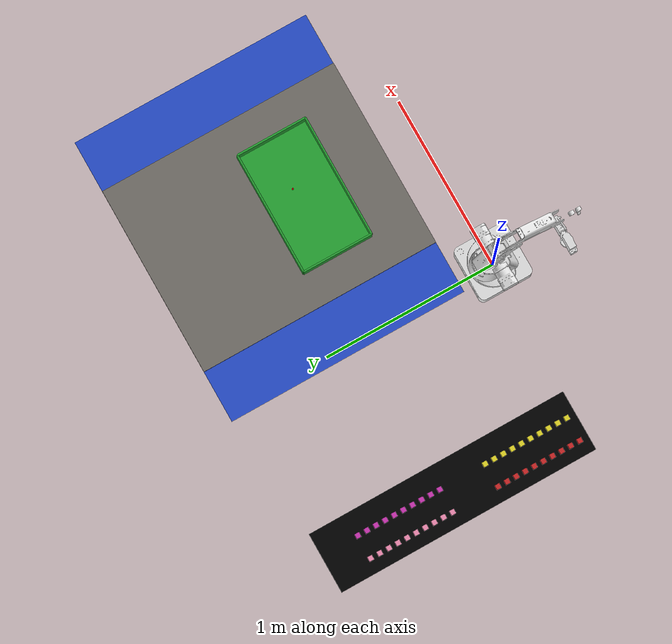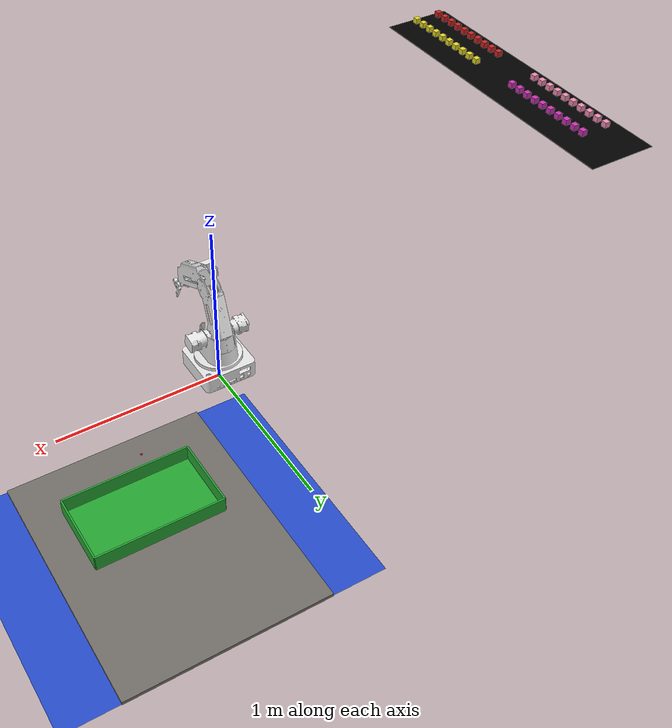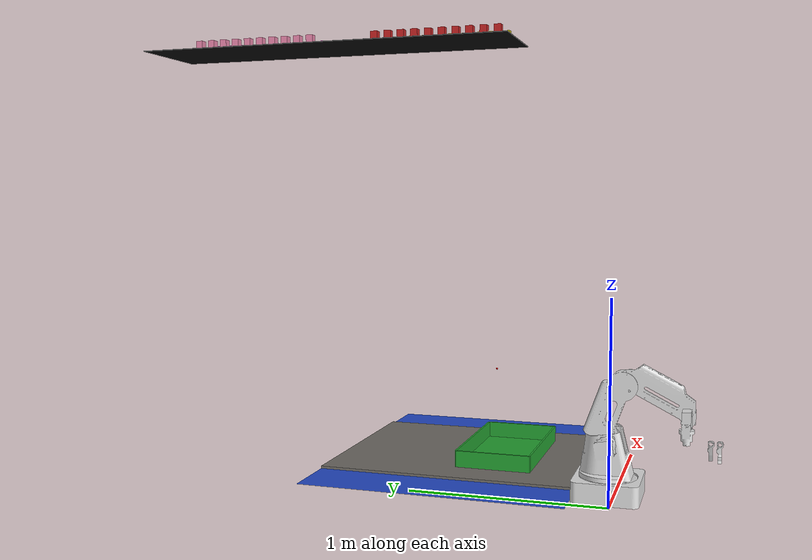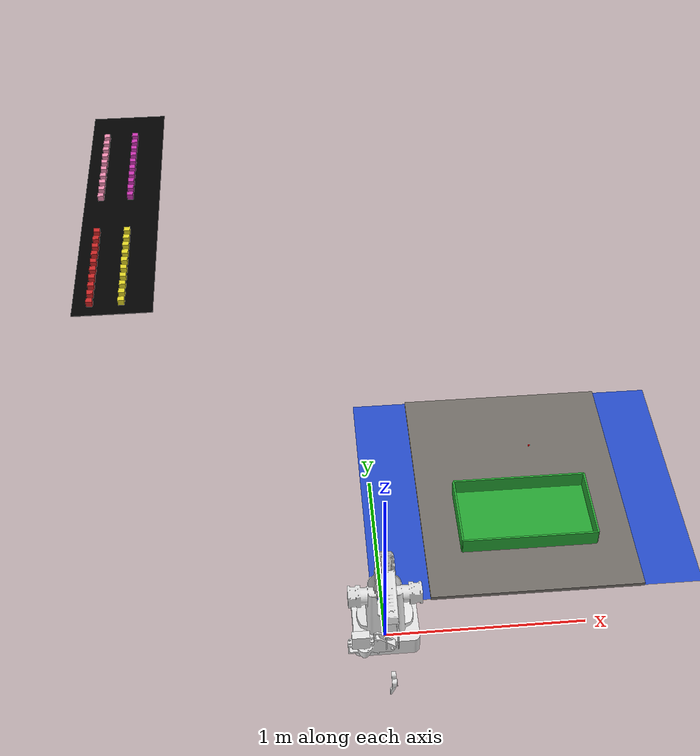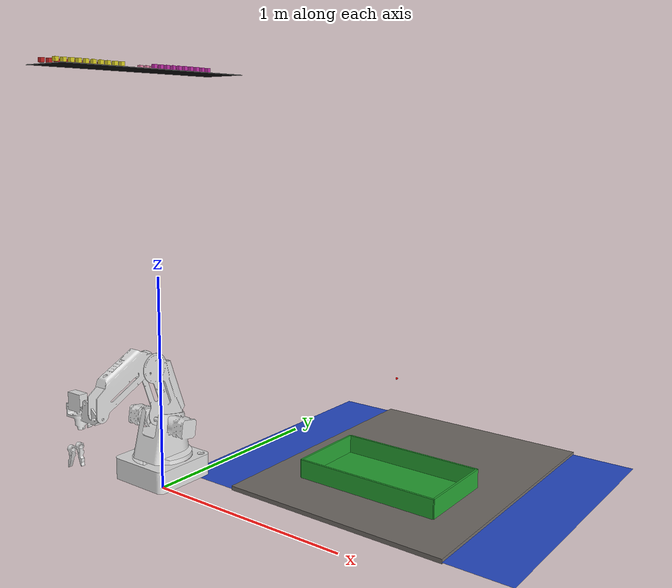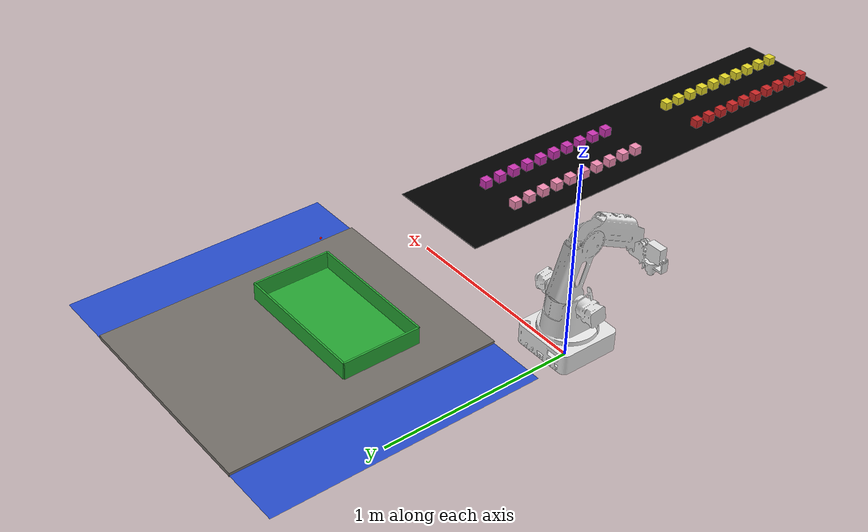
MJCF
<?xml version="1.0" encoding="utf-8"?>
<mujoco>
	<compiler angle="radian" coordinate="local" meshdir="../stls/dobot" texturedir="../textures"></compiler>
	<option timestep="0.002">
		<flag warmstart="enable"></flag>
	</option>
	<visual>
		<quality shadowsize="4096"></quality>
	</visual>

	<size njmax="1500" nconmax="500"></size>

	<include file="shared_pick.xml"></include>

	<worldbody>
		<geom name="floor0" pos="0.8 0.9 0" size="0.85 0.70 1" type="plane" condim="3" material="floor_mat"></geom>
		<body name="floor0" pos="0.8 0.75 0">
			<site name="target0" pos="0 0 0.5" size="0.005" rgba="1 0 0 1" type="sphere"></site>
			<body pos="0 0.15 0" name="table0">
				<geom name="table0" size="0.55 0.7 0.01" type="box" mass="2000" material="table_mat"></geom>
				<body name="tray" pos = "0 -0.215 0.01">
					<geom name="tray_base" size="0.355 0.205 0.001" type="box" mass="300" material="tray_mat"></geom>
					<geom size="0.355 0.005 0.045" type="box" mass="300" pos="0 0.205 0.045" material="tray_mat"></geom>
					<geom size="0.355 0.005 0.045" type="box" mass="300" pos="0 -0.205 0.045" material="tray_mat"></geom>
					<geom size="0.005 0.205 0.045" type="box" mass="300" pos="0.355 0 0.045" material="tray_mat"></geom>
					<geom size="0.005 0.205 0.045" type="box" mass="300" pos="-0.355 0 0.045" material="tray_mat"></geom>
				</body>
				<camera euler="0.78 0 0" fovy="40" name="camera0" pos="0 -1 1" mode="targetbody" target="tray"></camera>
			</body>
		</body>

		<include file="robot_pick.xml"></include>

		<body name="object0" pos="0.025 0.025 0.025">
			<joint name="object0:joint" type="free" damping="0.01"></joint>
			<geom size="0.0125 0.0125 0.0125" type="box" condim="3" name="object0" material="blue_block_mat" mass="2"></geom>
			<site name="object0" pos="0 0 0" size="0.012 0.012 0.012" rgba="1 0 0 1" type="sphere"></site>
		</body>

		<include file="clutter.xml"></include>

		<light directional="false" ambient="0.2 0.2 0.2" diffuse="0.8 0.8 0.8" specular="0.3 0.3 0.3" castshadow="false" pos="0.8 0.9 3" name="light0"></light>
	</worldbody>

	<actuator>
		<position ctrllimited="true" ctrlrange="0 0.025" joint="dobot:r_gripper_joint" kp="30000" name="dobot:r_gripper_joint"></position>
		<position ctrllimited="true" ctrlrange="-0.025 0" joint="dobot:l_gripper_joint" kp="30000" name="dobot:l_gripper_joint"></position>
	</actuator>
</mujoco>

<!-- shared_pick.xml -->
<mujoco>
    <asset>
        <texture type="skybox" builtin="gradient" rgb1="0 0 0" rgb2="0.5 0.5 1" width="32" height="32"></texture>
        <texture name="texture_block" file="block.png" gridsize="3 4" gridlayout=".U..LFRB.D.."></texture>
        <texture name="red_block" file="block_red.png" gridsize="3 4" gridlayout=".U..LFRB.D.."></texture>
        <texture name="yellow_block" file="block_yellow.png" gridsize="3 4" gridlayout=".U..LFRB.D.."></texture>
        <texture name="green_block" file="block_green.png" gridsize="3 4" gridlayout=".U..LFRB.D.."></texture>
        <texture name="blue_block" file="block_blue.png" gridsize="3 4" gridlayout=".U..LFRB.D.."></texture>
        <texture name="pink_block" file="block_pink.png" gridsize="3 4" gridlayout=".U..LFRB.D.."></texture>
        <texture name="magenta_block" file="block_magenta.png" gridsize="3 4" gridlayout=".U..LFRB.D.."></texture>
        <texture name="arm_tex" file="arm.png" type="2d"></texture>
        <texture name="base_tex" file="base.png" type="2d"></texture>
        <texture name="base_blue_tex" file="base_blue.png" type="2d"></texture>
        <texture name="base_green_tex" file="base_green.png" type="2d"></texture>
        <texture name="gripper_tex" file="gripper.png" type="2d"></texture>

        <material name="table_mat" specular="0" shininess="0.5" reflectance="0" rgba="0.6 0.6 0.6 1" texture="base_tex"></material>
        <material name="floor_mat" specular="0" shininess="0.5" reflectance="0" rgba="1 1 1 1" texture="base_blue_tex"></material>
        <material name="tray_mat" specular="0" shininess="0.5" reflectance="0" rgba="1 1 1 1" texture="base_green_tex"></material>
        <material name="block_mat" specular="0" shininess="0.5" reflectance="0" rgba="1 1 1 1" texture="texture_block"></material>
        <material name="red_block_mat" specular="0" shininess="0.5" reflectance="0" rgba="1 1 1 1" texture="red_block"></material>
        <material name="yellow_block_mat" specular="0" shininess="0.5" reflectance="0" rgba="1 1 1 1" texture="yellow_block"></material>
        <material name="green_block_mat" specular="0" shininess="0.5" reflectance="0" rgba="1 1 1 1" texture="green_block"></material>
        <material name="blue_block_mat" specular="0" shininess="0.5" reflectance="0" rgba="1 1 1 1" texture="blue_block"></material>
        <material name="pink_block_mat" specular="0" shininess="0.5" reflectance="0" rgba="1 1 1 1" texture="pink_block"></material>
        <material name="magenta_block_mat" specular="0" shininess="0.5" reflectance="0" rgba="1 1 1 1" texture="magenta_block"></material>
        <material name="puck_mat" specular="0" shininess="0.5" reflectance="0" rgba="0.2 0.2 0.2 1" texture="base_tex"></material>
        <material name="dobot_mat" shininess="0.03" specular="0.4" rgba ="1 1 1 0"></material>
        <material name="arm_mat" shininess="0.03" specular="0.4" texture="arm_tex"></material>
        <material name="gripper_mat" shininess="0.03" specular="0.4" texture="gripper_tex"></material>

        <mesh file="fpart1.stl" name="dobot:rear_arm_link" scale="0.002 0.002 0.002"></mesh>
		<mesh file="fpart2.stl" name="dobot:front_arm_link" scale="0.002 0.002 0.002"></mesh>
		<mesh file="fpart3.stl" name="dobot:lift_link" scale="0.002 0.002 0.002"></mesh>
		<mesh file="fpart4.stl" name="dobot:base_link" scale="0.002 0.002 0.002"></mesh>
        <mesh file="gripper_base.stl" name="dobot:gripper_link" scale="0.002 0.002 0.002"></mesh>
		<mesh file="leftArm.stl" name="dobot:l_gripper_link" scale="0.002 0.002 0.002"></mesh>
		<mesh file="rightArm.stl" name="dobot:r_gripper_link" scale="0.002 0.002 0.002"></mesh>

    </asset>

    <equality>
        <weld body1="dobot:mocap" body2="dobot:gripper_link" solimp="0.9 0.95 0.001" solref="0.02 1"></weld>
    </equality>

    <default>
        <default class="dobot:fetch">
            <geom margin="0.001" material="dobot_mat" rgba="1 1 1 1" solimp="0.99 0.99 0.01" solref="0.01 1" type="mesh" user="0" group="1"></geom>
            <joint armature="1" damping="50" frictionloss="0" stiffness="0"></joint>

            <default class="dobot:fetchGripper">
                <geom condim="4" margin="0.001" type="box" user="0" rgba="0.356 0.361 0.376 1.0"></geom>
                <joint armature="100" damping="1000" limited="true" solimplimit="0.99 0.999 0.01" solreflimit="0.01 1" type="slide"></joint>
            </default>

            <default class="dobot:white">
                <geom rgba="0.9 0.9 0.9 1.0"></geom>
            </default>
            <default class="dobot:black">
                <geom rgba="0.2 0.2 0.2 1.0"></geom>
            </default>
        </default>
    </default>
</mujoco>

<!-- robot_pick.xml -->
<mujoco>
	<body mocap="true" name="dobot:mocap" pos="1 1 1">
		<geom conaffinity="0" contype="0" pos="0 0 0" rgba="0 0.5 0 0" size="0.005 0.005 0.005" type="box"></geom>
		<geom conaffinity="0" contype="0" pos="0 0 0" rgba="0 0.5 0 0" size="1 0.005 0.005" type="box"></geom>
		<geom conaffinity="0" contype="0" pos="0 0 0" rgba="0 0.5 0 0" size="0.005 1 0.001" type="box"></geom>
		<geom conaffinity="0" contype="0" pos="0 0 0" rgba="0 0.5 0 0" size="0.005 0.005 1" type="box"></geom>

	</body>
	<body childclass="dobot:fetch" name="dobot:base_link" pos="0 0 0.1" euler="0 0 0">
		<joint armature="0.0001" axis="1 0 0" damping="1e+11" name="dobot:slide0" pos="0 0 0" type="slide"></joint>
		<joint armature="0.0001" axis="0 1 0" damping="1e+11" name="dobot:slide1" pos="0 0 0" type="slide"></joint>
		<joint armature="0.0001" axis="0 0 1" damping="1e+11" name="dobot:slide2" pos="0 0 0" type="slide"></joint>
			<inertial diaginertia="1.2869 1.2236 0.9868" mass="1.5" pos="0 0 0"></inertial>
			<geom mesh="dobot:base_link" name="dobot:base_link" material="arm_mat" class="dobot:white"></geom>
			<body name="dobot:lift_link" pos="0 0 0.066" euler="0 0 0">
				<inertial diaginertia="1.2869 1.2236 0.9868" mass="0.5" pos="0 0 0"></inertial>
				<geom mesh="dobot:lift_link" name="dobot:lift_link" material="arm_mat" class="dobot:white"></geom>
				<joint name="dobot:base_pan" type="hinge" pos="0 0 0" axis="0 0 1" range="-1.57 1.57" limited="true"/>
				<body name="dobot:rear_arm_link" pos="0 0 0.16" euler="0 0 0">
					<inertial diaginertia="1.2869 1.2236 0.9868" mass="0.85" pos="0 0 0" ></inertial>
					<geom mesh="dobot:rear_arm_link" name="dobot:rear_arm_link" pos = "0 0 0" material="arm_mat" class="dobot:white"></geom>
					<joint name="dobot:base_tilt" type="hinge" pos="0 0 0" axis="1 0 0" range="0 1.4835" limited="true"/>
					<body name="dobot:front_arm_link" pos="0 -0.098 0.246" euler="0 0 0">
						<inertial diaginertia="1.2869 1.2236 0.9868" mass="0.85" pos="0 0 0"></inertial>
						<geom mesh="dobot:front_arm_link" name="dobot:front_arm_link" pos = "0 0 0" material="arm_mat" class="dobot:white"></geom>
						<joint name="dobot:elbow_flex" type="hinge" pos="0 0 0" axis="1 0 0" range="-1.658 0.174" limited="true"/>
						<body name="dobot:gripper_link" pos="0 -0.26 -0.136" euler="0 0 0">
							<inertial diaginertia="1.2869 1.2236 0.9868" mass="0.3294" pos="0 0 0"></inertial>
							<geom mesh="dobot:gripper_link" name="dobot:gripper_link" pos = "0 0 0" material="gripper_mat" class="dobot:white"></geom>
							<joint name="dobot:wrist_flex" type="hinge" pos="0 0 0" axis="1 0 0"/>

							<body childclass="dobot:fetchGripper" name="dobot:l_gripper_link" pos="0 -0.1425 -0.09" euler="0 0 0">
								<inertial diaginertia="1.2869 1.2236 0.9868" mass="0.3294" pos="0 0 0"></inertial>
								<geom mesh="dobot:l_gripper_link" name="dobot:l_gripper_link" pos = "0 0 0" material="gripper_mat" class="dobot:white"></geom>
								<joint name="dobot:l_gripper_joint" type="slide" axis="0 1 0" limited="true" range="-0.025 0"/>
							</body>
							<body childclass="dobot:fetchGripper" name="dobot:r_gripper_link" pos="0 -0.1025 -0.09" euler="0 0 0">
								<inertial diaginertia="1.2869 1.2236 0.9868" mass="0.3294" pos="0 0 0"></inertial>
								<geom mesh="dobot:r_gripper_link" name="dobot:r_gripper_link" pos = "0 0 0" material="gripper_mat" class="dobot:white"></geom>
								<joint name="dobot:r_gripper_joint" type="slide" axis="0 1 0" limited="true" range = "0 0.025"/>
							</body>
							<site name="dobot:grip" pos="0 -0.123 -0.14" rgba="1 1 1 0" size="0.02 0.02 0.02"></site>
						</body>
					</body>
				</body>
			</body>
		</body>

</mujoco>

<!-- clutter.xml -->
<mujoco>
		<body pos = "-1.0625 0.9 2">
			<geom size="0.16 0.70 0.001" type="box" mass="300" rgba="0 0 0 1"></geom>
		</body>
        <body name="object1" pos="-1.025 0.250 2.025">
			<joint name="object1:joint" type="free" damping="0.01"></joint>
			<geom size="0.0125 0.0125 0.0125" type="box" condim="3" name="object1" material="yellow_block_mat" mass="2"></geom>
			<site name="object1" pos="0 0 0" size="0.0125 0.0125 0.0125" rgba="1 0 0 1" type="sphere"></site>
		</body>
		<body name="object2" pos="-1.025 0.300 2.025">
			<joint name="object2:joint" type="free" damping="0.01"></joint>
			<geom size="0.0125 0.0125 0.0125" type="box" condim="3" name="object2" material="yellow_block_mat" mass="2"></geom>
			<site name="object2" pos="0 0 0" size="0.0125 0.0125 0.0125" rgba="1 0 0 1" type="sphere"></site>
		</body>
		<body name="object3" pos="-1.025 0.350 2.025">
			<joint name="object3:joint" type="free" damping="0.01"></joint>
			<geom size="0.0125 0.0125 0.0125" type="box" condim="3" name="object3" material="yellow_block_mat" mass="2"></geom>
			<site name="object3" pos="0 0 0" size="0.0125 0.0125 0.0125" rgba="1 0 0 1" type="sphere"></site>
		</body>
		<body name="object4" pos="-1.025 0.400 2.025">
			<joint name="object4:joint" type="free" damping="0.01"></joint>
			<geom size="0.0125 0.0125 0.0125" type="box" condim="3" name="object4" material="yellow_block_mat" mass="2"></geom>
			<site name="object4" pos="0 0 0" size="0.0125 0.0125 0.0125" rgba="1 0 0 1" type="sphere"></site>
		</body>
		<body name="object5" pos="-1.025 0.450 2.025">
			<joint name="object5:joint" type="free" damping="0.01"></joint>
			<geom size="0.0125 0.0125 0.0125" type="box" condim="3" name="object5" material="yellow_block_mat" mass="2"></geom>
			<site name="object5" pos="0 0 0" size="0.0125 0.0125 0.0125" rgba="1 0 0 1" type="sphere"></site>
		</body>
		<body name="object6" pos="-1.025 0.500 2.025">
			<joint name="object6:joint" type="free" damping="0.01"></joint>
			<geom size="0.0125 0.0125 0.0125" type="box" condim="3" name="object6" material="yellow_block_mat" mass="2"></geom>
			<site name="object6" pos="0 0 0" size="0.0125 0.0125 0.0125" rgba="1 0 0 1" type="sphere"></site>
		</body>
		<body name="object7" pos="-1.025 0.550 2.025">
			<joint name="object7:joint" type="free" damping="0.01"></joint>
			<geom size="0.0125 0.0125 0.0125" type="box" condim="3" name="object7" material="yellow_block_mat" mass="2"></geom>
			<site name="object7" pos="0 0 0" size="0.0125 0.0125 0.0125" rgba="1 0 0 1" type="sphere"></site>
		</body>
		<body name="object8" pos="-1.025 0.600 2.025">
			<joint name="object8:joint" type="free" damping="0.01"></joint>
			<geom size="0.0125 0.0125 0.0125" type="box" condim="3" name="object8" material="yellow_block_mat" mass="2"></geom>
			<site name="object8" pos="0 0 0" size="0.0125 0.0125 0.0125" rgba="1 0 0 1" type="sphere"></site>
		</body>
		<body name="object9" pos="-1.025 0.650 2.025">
			<joint name="object9:joint" type="free" damping="0.01"></joint>
			<geom size="0.0125 0.0125 0.0125" type="box" condim="3" name="object9" material="yellow_block_mat" mass="2"></geom>
			<site name="object9" pos="0 0 0" size="0.0125 0.0125 0.0125" rgba="1 0 0 1" type="sphere"></site>
		</body>
		<body name="object10" pos="-1.025 0.700 2.025">
			<joint name="object10:joint" type="free" damping="0.01"></joint>
			<geom size="0.0125 0.0125 0.0125" type="box" condim="3" name="object10" material="yellow_block_mat" mass="2"></geom>
			<site name="object10" pos="0 0 0" size="0.0125 0.0125 0.0125" rgba="1 0 0 1" type="sphere"></site>
		</body>
        <body name="object11" pos="-1.15 0.250 2.025">
			<joint name="object11:joint" type="free" damping="0.01"></joint>
			<geom size="0.0125 0.0125 0.0125" type="box" condim="3" name="object11" material="red_block_mat" mass="2"></geom>
			<site name="object11" pos="0 0 0" size="0.0125 0.0125 0.0125" rgba="1 0 0 1" type="sphere"></site>
		</body>
		<body name="object12" pos="-1.15 0.300 2.025">
			<joint name="object12:joint" type="free" damping="0.01"></joint>
			<geom size="0.0125 0.0125 0.0125" type="box" condim="3" name="object12" material="red_block_mat" mass="2"></geom>
			<site name="object12" pos="0 0 0" size="0.0125 0.0125 0.0125" rgba="1 0 0 1" type="sphere"></site>
		</body>
		<body name="object13" pos="-1.15 0.350 2.025">
			<joint name="object13:joint" type="free" damping="0.01"></joint>
			<geom size="0.0125 0.0125 0.0125" type="box" condim="3" name="object13" material="red_block_mat" mass="2"></geom>
			<site name="object13" pos="0 0 0" size="0.0125 0.0125 0.0125" rgba="1 0 0 1" type="sphere"></site>
		</body>
		<body name="object14" pos="-1.15 0.400 2.025">
			<joint name="object14:joint" type="free" damping="0.01"></joint>
			<geom size="0.0125 0.0125 0.0125" type="box" condim="3" name="object14" material="red_block_mat" mass="2"></geom>
			<site name="object14" pos="0 0 0" size="0.0125 0.0125 0.0125" rgba="1 0 0 1" type="sphere"></site>
		</body>
		<body name="object15" pos="-1.15 0.450 2.025">
			<joint name="object15:joint" type="free" damping="0.01"></joint>
			<geom size="0.0125 0.0125 0.0125" type="box" condim="3" name="object15" material="red_block_mat" mass="2"></geom>
			<site name="object15" pos="0 0 0" size="0.0125 0.0125 0.0125" rgba="1 0 0 1" type="sphere"></site>
		</body>
		<body name="object16" pos="-1.15 0.500 2.025">
			<joint name="object16:joint" type="free" damping="0.01"></joint>
			<geom size="0.0125 0.0125 0.0125" type="box" condim="3" name="object16" material="red_block_mat" mass="2"></geom>
			<site name="object16" pos="0 0 0" size="0.0125 0.0125 0.0125" rgba="1 0 0 1" type="sphere"></site>
		</body>
		<body name="object17" pos="-1.15 0.550 2.025">
			<joint name="object17:joint" type="free" damping="0.01"></joint>
			<geom size="0.0125 0.0125 0.0125" type="box" condim="3" name="object17" material="red_block_mat" mass="2"></geom>
			<site name="object17" pos="0 0 0" size="0.0125 0.0125 0.0125" rgba="1 0 0 1" type="sphere"></site>
		</body>
		<body name="object18" pos="-1.15 0.600 2.025">
			<joint name="object18:joint" type="free" damping="0.01"></joint>
			<geom size="0.0125 0.0125 0.0125" type="box" condim="3" name="object18" material="red_block_mat" mass="2"></geom>
			<site name="object18" pos="0 0 0" size="0.0125 0.0125 0.0125" rgba="1 0 0 1" type="sphere"></site>
		</body>
		<body name="object19" pos="-1.15 0.650 2.025">
			<joint name="object19:joint" type="free" damping="0.01"></joint>
			<geom size="0.0125 0.0125 0.0125" type="box" condim="3" name="object19" material="red_block_mat" mass="2"></geom>
			<site name="object19" pos="0 0 0" size="0.0125 0.0125 0.0125" rgba="1 0 0 1" type="sphere"></site>
		</body>
		<body name="object20" pos="-1.15 .700 2.025">
			<joint name="object20:joint" type="free" damping="0.01"></joint>
			<geom size="0.0125 0.0125 0.0125" type="box" condim="3" name="object20" material="red_block_mat" mass="2"></geom>
			<site name="object20" pos="0 0 0" size="0.0125 0.0125 0.0125" rgba="1 0 0 1" type="sphere"></site>
		</body>
        <body name="object21" pos="-1.025 0.950 2.025">
			<joint name="object21:joint" type="free" damping="0.01"></joint>
			<geom size="0.0125 0.0125 0.0125" type="box" condim="3" name="object21" material="magenta_block_mat" mass="2"></geom>
			<site name="object21" pos="0 0 0" size="0.0125 0.0125 0.0125" rgba="1 0 0 1" type="sphere"></site>
		</body>
		<body name="object22" pos="-1.025 1.000 2.025">
			<joint name="object22:joint" type="free" damping="0.01"></joint>
			<geom size="0.0125 0.0125 0.0125" type="box" condim="3" name="object22" material="magenta_block_mat" mass="2"></geom>
			<site name="object22" pos="0 0 0" size="0.0125 0.0125 0.0125" rgba="1 0 0 1" type="sphere"></site>
		</body>
		<body name="object23" pos="-1.025 1.050 2.025">
			<joint name="object23:joint" type="free" damping="0.01"></joint>
			<geom size="0.0125 0.0125 0.0125" type="box" condim="3" name="object23" material="magenta_block_mat" mass="2"></geom>
			<site name="object23" pos="0 0 0" size="0.0125 0.0125 0.0125" rgba="1 0 0 1" type="sphere"></site>
		</body>
		<body name="object24" pos="-1.025 1.100 2.025">
			<joint name="object24:joint" type="free" damping="0.01"></joint>
			<geom size="0.0125 0.0125 0.0125" type="box" condim="3" name="object24" material="magenta_block_mat" mass="2"></geom>
			<site name="object24" pos="0 0 0" size="0.0125 0.0125 0.0125" rgba="1 0 0 1" type="sphere"></site>
		</body>
		<body name="object25" pos="-1.025 1.150 2.025">
			<joint name="object25:joint" type="free" damping="0.01"></joint>
			<geom size="0.0125 0.0125 0.0125" type="box" condim="3" name="object25" material="magenta_block_mat" mass="2"></geom>
			<site name="object25" pos="0 0 0" size="0.0125 0.0125 0.0125" rgba="1 0 0 1" type="sphere"></site>
		</body>
		<body name="object26" pos="-1.025 1.200 2.025">
			<joint name="object26:joint" type="free" damping="0.01"></joint>
			<geom size="0.0125 0.0125 0.0125" type="box" condim="3" name="object26" material="magenta_block_mat" mass="2"></geom>
			<site name="object26" pos="0 0 0" size="0.0125 0.0125 0.0125" rgba="1 0 0 1" type="sphere"></site>
		</body>
		<body name="object27" pos="-1.025 1.250 2.025">
			<joint name="object27:joint" type="free" damping="0.01"></joint>
			<geom size="0.0125 0.0125 0.0125" type="box" condim="3" name="object27" material="magenta_block_mat" mass="2"></geom>
			<site name="object27" pos="0 0 0" size="0.0125 0.0125 0.0125" rgba="1 0 0 1" type="sphere"></site>
		</body>
		<body name="object28" pos="-1.025 1.300 2.025">
			<joint name="object28:joint" type="free" damping="0.01"></joint>
			<geom size="0.0125 0.0125 0.0125" type="box" condim="3" name="object28" material="magenta_block_mat" mass="2"></geom>
			<site name="object28" pos="0 0 0" size="0.0125 0.0125 0.0125" rgba="1 0 0 1" type="sphere"></site>
		</body>
		<body name="object29" pos="-1.025 1.350 2.025">
			<joint name="object29:joint" type="free" damping="0.01"></joint>
			<geom size="0.0125 0.0125 0.0125" type="box" condim="3" name="object29" material="magenta_block_mat" mass="2"></geom>
			<site name="object29" pos="0 0 0" size="0.0125 0.0125 0.0125" rgba="1 0 0 1" type="sphere"></site>
		</body>
		<body name="object30" pos="-1.025 1.400 2.025">
			<joint name="object30:joint" type="free" damping="0.01"></joint>
			<geom size="0.0125 0.0125 0.0125" type="box" condim="3" name="object30" material="magenta_block_mat" mass="2"></geom>
			<site name="object30" pos="0 0 0" size="0.0125 0.0125 0.0125" rgba="1 0 0 1" type="sphere"></site>
		</body>
        <body name="object31" pos="-1.15 0.950 2.025">
			<joint name="object31:joint" type="free" damping="0.01"></joint>
			<geom size="0.0125 0.0125 0.0125" type="box" condim="3" name="object31" material="pink_block_mat" mass="2"></geom>
			<site name="object31" pos="0 0 0" size="0.0125 0.0125 0.0125" rgba="1 0 0 1" type="sphere"></site>
		</body>
		<body name="object32" pos="-1.15 1.000 2.025">
			<joint name="object32:joint" type="free" damping="0.01"></joint>
			<geom size="0.0125 0.0125 0.0125" type="box" condim="3" name="object32" material="pink_block_mat" mass="2"></geom>
			<site name="object32" pos="0 0 0" size="0.0125 0.0125 0.0125" rgba="1 0 0 1" type="sphere"></site>
		</body>
		<body name="object33" pos="-1.15 1.050 2.025">
			<joint name="object33:joint" type="free" damping="0.01"></joint>
			<geom size="0.0125 0.0125 0.0125" type="box" condim="3" name="object33" material="pink_block_mat" mass="2"></geom>
			<site name="object33" pos="0 0 0" size="0.0125 0.0125 0.0125" rgba="1 0 0 1" type="sphere"></site>
		</body>
		<body name="object34" pos="-1.15 1.100 2.025">
			<joint name="object34:joint" type="free" damping="0.01"></joint>
			<geom size="0.0125 0.0125 0.0125" type="box" condim="3" name="object34" material="pink_block_mat" mass="2"></geom>
			<site name="object34" pos="0 0 0" size="0.0125 0.0125 0.0125" rgba="1 0 0 1" type="sphere"></site>
		</body>
		<body name="object35" pos="-1.15 1.150 2.025">
			<joint name="object35:joint" type="free" damping="0.01"></joint>
			<geom size="0.0125 0.0125 0.0125" type="box" condim="3" name="object35" material="pink_block_mat" mass="2"></geom>
			<site name="object35" pos="0 0 0" size="0.0125 0.0125 0.0125" rgba="1 0 0 1" type="sphere"></site>
		</body>
		<body name="object36" pos="-1.15 1.200 2.025">
			<joint name="object36:joint" type="free" damping="0.01"></joint>
			<geom size="0.0125 0.0125 0.0125" type="box" condim="3" name="object36" material="pink_block_mat" mass="2"></geom>
			<site name="object36" pos="0 0 0" size="0.0125 0.0125 0.0125" rgba="1 0 0 1" type="sphere"></site>
		</body>
		<body name="object37" pos="-1.15 1.250 2.025">
			<joint name="object37:joint" type="free" damping="0.01"></joint>
			<geom size="0.0125 0.0125 0.0125" type="box" condim="3" name="object37" material="pink_block_mat" mass="2"></geom>
			<site name="object37" pos="0 0 0" size="0.0125 0.0125 0.0125" rgba="1 0 0 1" type="sphere"></site>
		</body>
		<body name="object38" pos="-1.15 1.300 2.025">
			<joint name="object38:joint" type="free" damping="0.01"></joint>
			<geom size="0.0125 0.0125 0.0125" type="box" condim="3" name="object38" material="pink_block_mat" mass="2"></geom>
			<site name="object38" pos="0 0 0" size="0.0125 0.0125 0.0125" rgba="1 0 0 1" type="sphere"></site>
		</body>
		<body name="object39" pos="-1.15 1.350 2.025">
			<joint name="object39:joint" type="free" damping="0.01"></joint>
			<geom size="0.0125 0.0125 0.0125" type="box" condim="3" name="object39" material="pink_block_mat" mass="2"></geom>
			<site name="object39" pos="0 0 0" size="0.0125 0.0125 0.0125" rgba="1 0 0 1" type="sphere"></site>
		</body>
		<body name="object40" pos="-1.15 1.400 2.025">
			<joint name="object40:joint" type="free" damping="0.01"></joint>
			<geom size="0.0125 0.0125 0.0125" type="box" condim="3" name="object40" material="pink_block_mat" mass="2"></geom>
			<site name="object40" pos="0 0 0" size="0.0125 0.0125 0.0125" rgba="1 0 0 1" type="sphere"></site>
		</body>
</mujoco>
